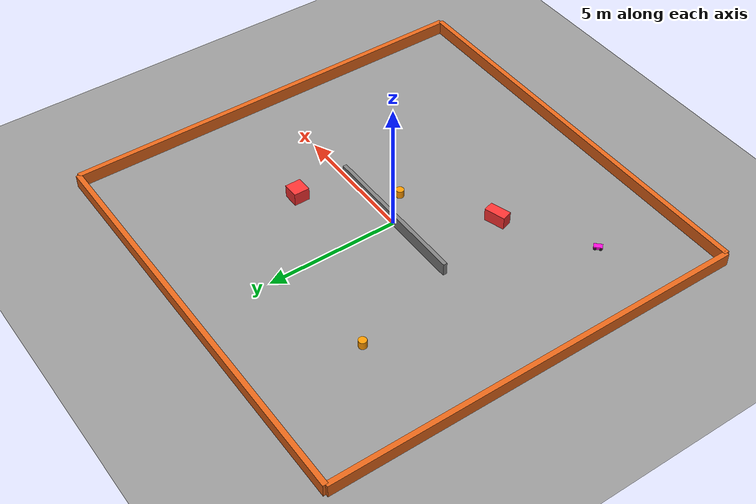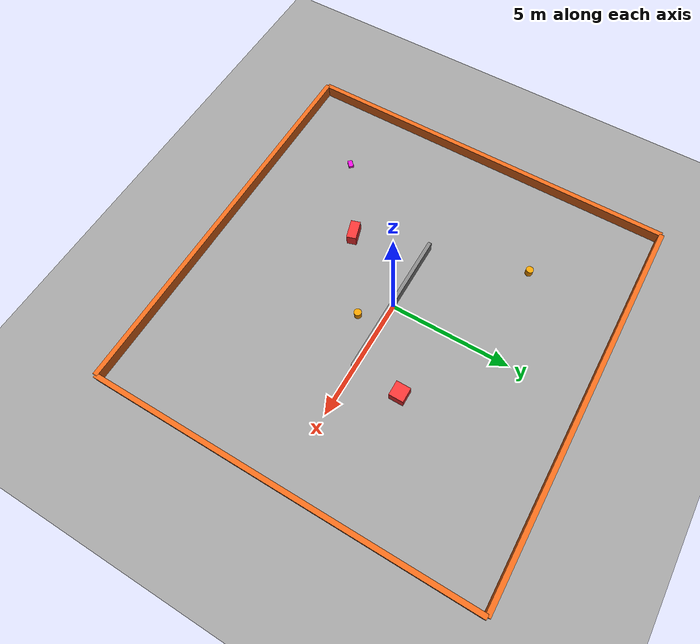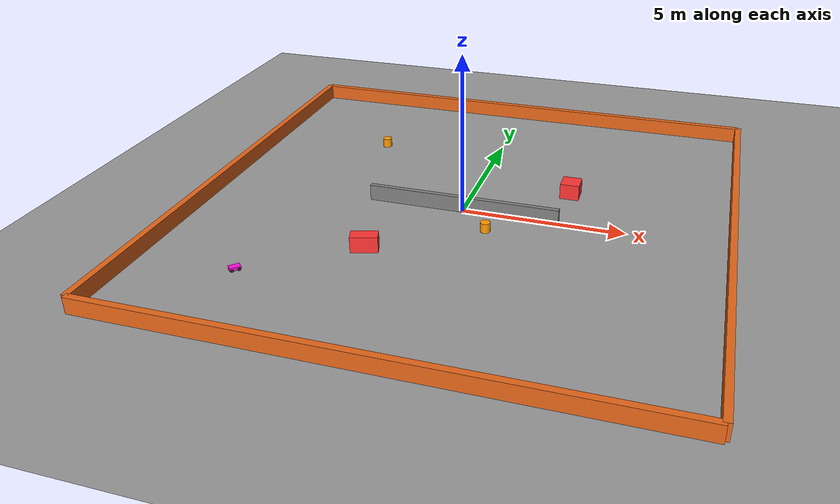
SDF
<?xml version="1.0" ?>
<sdf version="1.9">
  <world name="limo_test_track">

    <!-- GUI configuration -->
    <gui fullscreen="0">
      <!-- 3D Scene -->
      <plugin filename="MinimalScene" name="3D View">
        <gz-gui>
          <title>3D View</title>
          <property type="bool" key="showTitleBar">false</property>
          <property type="string" key="state">docked</property>
        </gz-gui>
        <engine>ogre2</engine>
        <scene>scene</scene>
        <ambient_light>0.4 0.4 0.4</ambient_light>
        <background_color>0.8 0.8 0.8</background_color>
        <camera_pose>-8 -8 12 0 0.7 0.78</camera_pose>
      </plugin>

      <!-- Camera controls -->
      <plugin filename="GzSceneManager" name="Scene Manager"/>
      <plugin filename="InteractiveViewControl" name="Interactive view"/>
      <plugin filename="CameraTracking" name="Camera Tracking"/>

      <!-- Marker manager (renders path visualization markers) -->
      <plugin filename="MarkerManager" name="Marker Manager"/>

      <!-- World control (play/pause/step) -->
      <plugin filename="WorldControl" name="World control">
        <gz-gui>
          <title>World control</title>
          <property type="bool" key="showTitleBar">false</property>
          <property type="bool" key="resizable">false</property>
          <property type="double" key="height">72</property>
          <property type="double" key="width">121</property>
          <property type="double" key="z">1</property>
          <property type="string" key="state">floating</property>
          <anchors target="3D View">
            <line own="left" target="left"/>
            <line own="bottom" target="bottom"/>
          </anchors>
        </gz-gui>
        <play_pause>true</play_pause>
        <step>true</step>
      </plugin>

      <!-- World stats (sim time, real time factor) -->
      <plugin filename="WorldStats" name="World stats">
        <gz-gui>
          <title>World stats</title>
          <property type="bool" key="showTitleBar">false</property>
          <property type="bool" key="resizable">false</property>
          <property type="double" key="height">110</property>
          <property type="double" key="width">290</property>
          <property type="double" key="z">1</property>
          <property type="string" key="state">floating</property>
          <anchors target="3D View">
            <line own="right" target="right"/>
            <line own="bottom" target="bottom"/>
          </anchors>
        </gz-gui>
        <sim_time>true</sim_time>
        <real_time>true</real_time>
        <real_time_factor>true</real_time_factor>
        <iterations>true</iterations>
      </plugin>

      <!-- Entity tree (shows models in scene) -->
      <plugin filename="EntityTree" name="Entity tree">
        <gz-gui>
          <property type="string" key="state">docked_collapsed</property>
        </gz-gui>
      </plugin>
    </gui>

    <!-- Physics -->
    <physics name="1ms" type="ode">
      <max_step_size>0.001</max_step_size>
      <real_time_factor>1.0</real_time_factor>
    </physics>

    <!-- Plugins -->
    <plugin filename="gz-sim-physics-system" name="gz::sim::systems::Physics"/>
    <plugin filename="gz-sim-user-commands-system" name="gz::sim::systems::UserCommands"/>
    <plugin filename="gz-sim-scene-broadcaster-system" name="gz::sim::systems::SceneBroadcaster"/>
    <plugin filename="gz-sim-sensors-system" name="gz::sim::systems::Sensors">
      <render_engine>ogre2</render_engine>
    </plugin>
    <plugin filename="gz-sim-imu-system" name="gz::sim::systems::Imu"/>
    <plugin filename="gz-sim-contact-system" name="gz::sim::systems::Contact"/>

    <!-- Sunlight -->
    <light type="directional" name="sun">
      <cast_shadows>true</cast_shadows>
      <pose>0 0 10 0 0 0</pose>
      <diffuse>0.9 0.9 0.9 1</diffuse>
      <specular>0.3 0.3 0.3 1</specular>
      <direction>-0.5 0.1 -0.9</direction>
    </light>

    <!-- Ground plane -->
    <model name="ground_plane">
      <static>true</static>
      <link name="link">
        <collision name="collision">
          <geometry><plane><normal>0 0 1</normal><size>100 100</size></plane></geometry>
          <surface>
            <friction><ode><mu>0.8</mu><mu2>0.8</mu2></ode></friction>
          </surface>
        </collision>
        <visual name="visual">
          <geometry><plane><normal>0 0 1</normal><size>100 100</size></plane></geometry>
          <material>
            <ambient>0.5 0.5 0.5 1</ambient>
            <diffuse>0.6 0.6 0.6 1</diffuse>
          </material>
        </visual>
      </link>
    </model>

    <!-- ============ TRACK BOUNDARY WALLS ============ -->
    <!-- Outer wall - North -->
    <model name="wall_north">
      <static>true</static>
      <pose>0 8 0.25 0 0 0</pose>
      <link name="link">
        <collision name="collision"><geometry><box><size>16 0.2 0.5</size></box></geometry></collision>
        <visual name="visual"><geometry><box><size>16 0.2 0.5</size></box></geometry>
          <material><ambient>0.8 0.3 0.1 1</ambient><diffuse>0.9 0.4 0.1 1</diffuse></material>
        </visual>
      </link>
    </model>

    <!-- Outer wall - South -->
    <model name="wall_south">
      <static>true</static>
      <pose>0 -8 0.25 0 0 0</pose>
      <link name="link">
        <collision name="collision"><geometry><box><size>16 0.2 0.5</size></box></geometry></collision>
        <visual name="visual"><geometry><box><size>16 0.2 0.5</size></box></geometry>
          <material><ambient>0.8 0.3 0.1 1</ambient><diffuse>0.9 0.4 0.1 1</diffuse></material>
        </visual>
      </link>
    </model>

    <!-- Outer wall - East -->
    <model name="wall_east">
      <static>true</static>
      <pose>8 0 0.25 0 0 0</pose>
      <link name="link">
        <collision name="collision"><geometry><box><size>0.2 16 0.5</size></box></geometry></collision>
        <visual name="visual"><geometry><box><size>0.2 16 0.5</size></box></geometry>
          <material><ambient>0.8 0.3 0.1 1</ambient><diffuse>0.9 0.4 0.1 1</diffuse></material>
        </visual>
      </link>
    </model>

    <!-- Outer wall - West -->
    <model name="wall_west">
      <static>true</static>
      <pose>-8 0 0.25 0 0 0</pose>
      <link name="link">
        <collision name="collision"><geometry><box><size>0.2 16 0.5</size></box></geometry></collision>
        <visual name="visual"><geometry><box><size>0.2 16 0.5</size></box></geometry>
          <material><ambient>0.8 0.3 0.1 1</ambient><diffuse>0.9 0.4 0.1 1</diffuse></material>
        </visual>
      </link>
    </model>

    <!-- ============ OBSTACLES ============ -->
    <!-- Box obstacle 1 -->
    <model name="obstacle_box_1">
      <static>true</static>
      <pose>3 2 0.25 0 0 0</pose>
      <link name="link">
        <collision name="collision"><geometry><box><size>0.6 0.6 0.5</size></box></geometry></collision>
        <visual name="visual"><geometry><box><size>0.6 0.6 0.5</size></box></geometry>
          <material><ambient>0.9 0.1 0.1 1</ambient><diffuse>1.0 0.2 0.2 1</diffuse></material>
        </visual>
      </link>
    </model>

    <!-- Box obstacle 2 -->
    <model name="obstacle_box_2">
      <static>true</static>
      <pose>-2 -3 0.25 0 0 0.3</pose>
      <link name="link">
        <collision name="collision"><geometry><box><size>0.8 0.4 0.5</size></box></geometry></collision>
        <visual name="visual"><geometry><box><size>0.8 0.4 0.5</size></box></geometry>
          <material><ambient>0.9 0.1 0.1 1</ambient><diffuse>1.0 0.2 0.2 1</diffuse></material>
        </visual>
      </link>
    </model>

    <!-- Cylinder obstacle (traffic cone) -->
    <model name="cone_1">
      <static>true</static>
      <pose>1 -1 0.15 0 0 0</pose>
      <link name="link">
        <collision name="collision"><geometry><cylinder><radius>0.15</radius><length>0.3</length></cylinder></geometry></collision>
        <visual name="visual"><geometry><cylinder><radius>0.15</radius><length>0.3</length></cylinder></geometry>
          <material><ambient>1.0 0.5 0.0 1</ambient><diffuse>1.0 0.6 0.0 1</diffuse></material>
        </visual>
      </link>
    </model>

    <model name="cone_2">
      <static>true</static>
      <pose>-4 4 0.15 0 0 0</pose>
      <link name="link">
        <collision name="collision"><geometry><cylinder><radius>0.15</radius><length>0.3</length></cylinder></geometry></collision>
        <visual name="visual"><geometry><cylinder><radius>0.15</radius><length>0.3</length></cylinder></geometry>
          <material><ambient>1.0 0.5 0.0 1</ambient><diffuse>1.0 0.6 0.0 1</diffuse></material>
        </visual>
      </link>
    </model>

    <!-- Inner wall (partial, creates a corridor) -->
    <model name="inner_wall">
      <static>true</static>
      <pose>0 0 0.25 0 0 0</pose>
      <link name="link">
        <collision name="collision"><geometry><box><size>6 0.15 0.5</size></box></geometry></collision>
        <visual name="visual"><geometry><box><size>6 0.15 0.5</size></box></geometry>
          <material><ambient>0.4 0.4 0.4 1</ambient><diffuse>0.5 0.5 0.5 1</diffuse></material>
        </visual>
      </link>
    </model>

    <!-- ============ LIMO PRO ROBOT ============ -->
    <include>
      <uri>model://limo_pro</uri>
      <name>limo</name>
      <pose>-5 -5 0.055 0 0 0.785</pose>
    </include>

  </world>
</sdf>

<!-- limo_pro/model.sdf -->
<sdf version="1.9">
  <model name="limo_pro">
    <static>false</static>

    <!-- ============ CHASSIS ============ -->
    <link name="base_link">
      <inertial>
        <mass>4.5</mass>
        <inertia>
          <ixx>0.045</ixx><iyy>0.08</iyy><izz>0.09</izz>
          <ixy>0</ixy><ixz>0</ixz><iyz>0</iyz>
        </inertia>
      </inertial>
      <visual name="chassis_visual">
        <geometry>
          <box><size>0.32 0.20 0.10</size></box>
        </geometry>
        <material>
          <ambient>1.0 0.0 0.85 1</ambient>
          <diffuse>1.0 0.05 0.85 1</diffuse>
          <emissive>0.35 0.0 0.3 1</emissive>
        </material>
      </visual>
      <collision name="chassis_collision">
        <geometry>
          <box><size>0.32 0.20 0.10</size></box>
        </geometry>
      </collision>

      <!-- ============ CAMERA SENSOR ============ -->
      <sensor name="camera" type="camera">
        <pose>0.16 0 0.12 0 0 0</pose>
        <always_on>true</always_on>
        <update_rate>30</update_rate>
        <topic>limo/camera</topic>
        <camera>
          <horizontal_fov>1.2</horizontal_fov>
          <image>
            <width>640</width>
            <height>480</height>
            <format>R8G8B8</format>
          </image>
          <clip><near>0.05</near><far>50</far></clip>
        </camera>
      </sensor>

      <!-- ============ LIDAR SENSOR ============ -->
      <sensor name="lidar" type="gpu_lidar">
        <pose>0.0 0 0.15 0 0 0</pose>
        <always_on>true</always_on>
        <update_rate>10</update_rate>
        <topic>limo/lidar</topic>
        <lidar>
          <scan>
            <horizontal>
              <samples>360</samples>
              <resolution>1</resolution>
              <min_angle>0</min_angle>
              <max_angle>6.28318</max_angle>
            </horizontal>
          </scan>
          <range>
            <min>0.1</min>
            <max>12.0</max>
            <resolution>0.01</resolution>
          </range>
        </lidar>
      </sensor>

      <!-- ============ IMU SENSOR ============ -->
      <sensor name="imu" type="imu">
        <pose>0 0 0.05 0 0 0</pose>
        <always_on>true</always_on>
        <update_rate>100</update_rate>
        <topic>limo/imu</topic>
        <imu>
          <angular_velocity>
            <x><noise type="gaussian"><mean>0</mean><stddev>0.001</stddev></noise></x>
            <y><noise type="gaussian"><mean>0</mean><stddev>0.001</stddev></noise></y>
            <z><noise type="gaussian"><mean>0</mean><stddev>0.001</stddev></noise></z>
          </angular_velocity>
          <linear_acceleration>
            <x><noise type="gaussian"><mean>0</mean><stddev>0.02</stddev></noise></x>
            <y><noise type="gaussian"><mean>0</mean><stddev>0.02</stddev></noise></y>
            <z><noise type="gaussian"><mean>0</mean><stddev>0.02</stddev></noise></z>
          </linear_acceleration>
        </imu>
      </sensor>
    </link>

    <!-- ============ REAR LEFT WHEEL ============ -->
    <link name="rear_left_wheel">
      <pose>-0.1 0.096 -0.03 -1.5707 0 0</pose>
      <inertial>
        <mass>0.3</mass>
        <inertia>
          <ixx>0.0002</ixx><iyy>0.0002</iyy><izz>0.0003</izz>
          <ixy>0</ixy><ixz>0</ixz><iyz>0</iyz>
        </inertia>
      </inertial>
      <visual name="visual">
        <geometry><cylinder><radius>0.045</radius><length>0.03</length></cylinder></geometry>
        <material><ambient>0.1 0.1 0.1 1</ambient><diffuse>0.15 0.15 0.15 1</diffuse></material>
      </visual>
      <collision name="collision">
        <geometry><cylinder><radius>0.045</radius><length>0.03</length></cylinder></geometry>
        <surface>
          <friction><ode><mu>1.0</mu><mu2>1.0</mu2></ode></friction>
        </surface>
      </collision>
    </link>
    <joint name="rear_left_wheel_joint" type="revolute">
      <parent>base_link</parent><child>rear_left_wheel</child>
      <axis><xyz>0 0 1</xyz></axis>
    </joint>

    <!-- ============ REAR RIGHT WHEEL ============ -->
    <link name="rear_right_wheel">
      <pose>-0.1 -0.096 -0.03 -1.5707 0 0</pose>
      <inertial>
        <mass>0.3</mass>
        <inertia>
          <ixx>0.0002</ixx><iyy>0.0002</iyy><izz>0.0003</izz>
          <ixy>0</ixy><ixz>0</ixz><iyz>0</iyz>
        </inertia>
      </inertial>
      <visual name="visual">
        <geometry><cylinder><radius>0.045</radius><length>0.03</length></cylinder></geometry>
        <material><ambient>0.1 0.1 0.1 1</ambient><diffuse>0.15 0.15 0.15 1</diffuse></material>
      </visual>
      <collision name="collision">
        <geometry><cylinder><radius>0.045</radius><length>0.03</length></cylinder></geometry>
        <surface>
          <friction><ode><mu>1.0</mu><mu2>1.0</mu2></ode></friction>
        </surface>
      </collision>
    </link>
    <joint name="rear_right_wheel_joint" type="revolute">
      <parent>base_link</parent><child>rear_right_wheel</child>
      <axis><xyz>0 0 1</xyz></axis>
    </joint>

    <!-- ============ FRONT LEFT STEERING + WHEEL ============ -->
    <link name="front_left_steering">
      <pose>0.1 0.096 -0.03 0 0 0</pose>
      <inertial><mass>0.05</mass>
        <inertia><ixx>0.00001</ixx><iyy>0.00001</iyy><izz>0.00001</izz>
          <ixy>0</ixy><ixz>0</ixz><iyz>0</iyz></inertia>
      </inertial>
    </link>
    <joint name="front_left_steering_joint" type="revolute">
      <parent>base_link</parent><child>front_left_steering</child>
      <axis><xyz>0 0 1</xyz>
        <limit><lower>-0.48</lower><upper>0.48</upper><effort>1e6</effort></limit>
      </axis>
    </joint>

    <link name="front_left_wheel">
      <pose>0.1 0.096 -0.03 -1.5707 0 0</pose>
      <inertial>
        <mass>0.3</mass>
        <inertia>
          <ixx>0.0002</ixx><iyy>0.0002</iyy><izz>0.0003</izz>
          <ixy>0</ixy><ixz>0</ixz><iyz>0</iyz>
        </inertia>
      </inertial>
      <visual name="visual">
        <geometry><cylinder><radius>0.045</radius><length>0.03</length></cylinder></geometry>
        <material><ambient>0.1 0.1 0.1 1</ambient><diffuse>0.15 0.15 0.15 1</diffuse></material>
      </visual>
      <collision name="collision">
        <geometry><cylinder><radius>0.045</radius><length>0.03</length></cylinder></geometry>
        <surface>
          <friction><ode><mu>1.0</mu><mu2>1.0</mu2></ode></friction>
        </surface>
      </collision>
    </link>
    <joint name="front_left_wheel_joint" type="revolute">
      <parent>front_left_steering</parent><child>front_left_wheel</child>
      <axis><xyz>0 0 1</xyz></axis>
    </joint>

    <!-- ============ FRONT RIGHT STEERING + WHEEL ============ -->
    <link name="front_right_steering">
      <pose>0.1 -0.096 -0.03 0 0 0</pose>
      <inertial><mass>0.05</mass>
        <inertia><ixx>0.00001</ixx><iyy>0.00001</iyy><izz>0.00001</izz>
          <ixy>0</ixy><ixz>0</ixz><iyz>0</iyz></inertia>
      </inertial>
    </link>
    <joint name="front_right_steering_joint" type="revolute">
      <parent>base_link</parent><child>front_right_steering</child>
      <axis><xyz>0 0 1</xyz>
        <limit><lower>-0.48</lower><upper>0.48</upper><effort>1e6</effort></limit>
      </axis>
    </joint>

    <link name="front_right_wheel">
      <pose>0.1 -0.096 -0.03 -1.5707 0 0</pose>
      <inertial>
        <mass>0.3</mass>
        <inertia>
          <ixx>0.0002</ixx><iyy>0.0002</iyy><izz>0.0003</izz>
          <ixy>0</ixy><ixz>0</ixz><iyz>0</iyz>
        </inertia>
      </inertial>
      <visual name="visual">
        <geometry><cylinder><radius>0.045</radius><length>0.03</length></cylinder></geometry>
        <material><ambient>0.1 0.1 0.1 1</ambient><diffuse>0.15 0.15 0.15 1</diffuse></material>
      </visual>
      <collision name="collision">
        <geometry><cylinder><radius>0.045</radius><length>0.03</length></cylinder></geometry>
        <surface>
          <friction><ode><mu>1.0</mu><mu2>1.0</mu2></ode></friction>
        </surface>
      </collision>
    </link>
    <joint name="front_right_wheel_joint" type="revolute">
      <parent>front_right_steering</parent><child>front_right_wheel</child>
      <axis><xyz>0 0 1</xyz></axis>
    </joint>

    <!-- ============ ACKERMANN STEERING PLUGIN ============ -->
    <plugin filename="gz-sim-ackermann-steering-system"
            name="gz::sim::systems::AckermannSteering">
      <left_joint>front_left_wheel_joint</left_joint>
      <right_joint>front_right_wheel_joint</right_joint>
      <left_steering_joint>front_left_steering_joint</left_steering_joint>
      <right_steering_joint>front_right_steering_joint</right_steering_joint>
      <kingpin_width>0.192</kingpin_width>
      <steering_limit>0.48</steering_limit>
      <steer_p_gain>8.0</steer_p_gain>
      <wheel_base>0.2</wheel_base>
      <wheel_separation>0.192</wheel_separation>
      <wheel_radius>0.045</wheel_radius>
      <topic>limo/cmd_vel</topic>
      <odom_topic>limo/odom</odom_topic>
      <tf_topic>limo/tf</tf_topic>
      <frame_id>odom</frame_id>
      <child_frame_id>base_link</child_frame_id>
      <odom_publish_frequency>20</odom_publish_frequency>
    </plugin>

    <!-- Joint state publisher for odometry -->
    <plugin filename="gz-sim-joint-state-publisher-system"
            name="gz::sim::systems::JointStatePublisher">
      <topic>limo/joint_states</topic>
    </plugin>

  </model>
</sdf>
